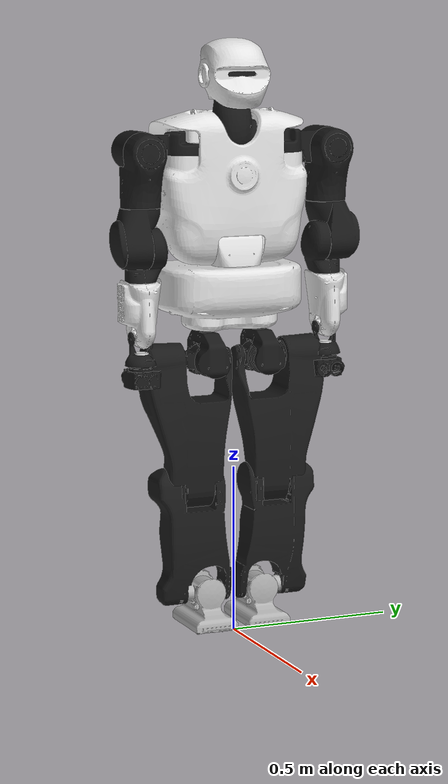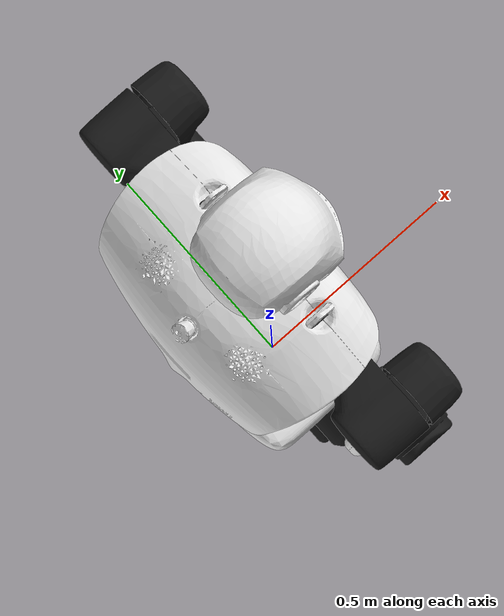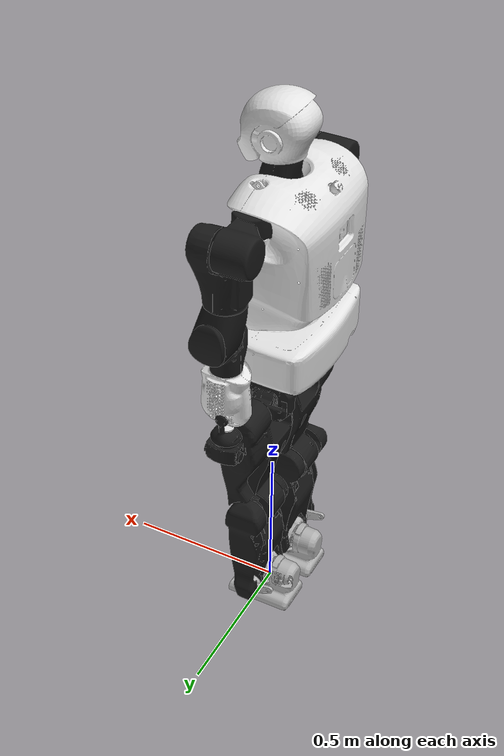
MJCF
<mujoco model="talos">
  <include file="talos_full.xml"/>

  <actuator>
    <motor name="torso_1_joint_torque" joint="torso_1_joint" ctrlrange="-200 200"/>
    <motor name="torso_2_joint_torque" joint="torso_2_joint" ctrlrange="-200 200"/>
    <motor name="arm_left_1_joint_torque" joint="arm_left_1_joint" ctrlrange="-100 100"/>
    <motor name="arm_left_2_joint_torque" joint="arm_left_2_joint" ctrlrange="-100 100"/>
    <motor name="arm_left_3_joint_torque" joint="arm_left_3_joint" ctrlrange="-70 70"/>
    <motor name="arm_left_4_joint_torque" joint="arm_left_4_joint" ctrlrange="-70 70"/>
    <motor name="arm_right_1_joint_torque" joint="arm_right_1_joint" ctrlrange="-100 100"/>
    <motor name="arm_right_2_joint_torque" joint="arm_right_2_joint" ctrlrange="-100 100"/>
    <motor name="arm_right_3_joint_torque" joint="arm_right_3_joint" ctrlrange="-70 70"/>
    <motor name="arm_right_4_joint_torque" joint="arm_right_4_joint" ctrlrange="-70 70"/>
    <motor name="leg_left_1_joint_torque" joint="leg_left_1_joint" ctrlrange="-100 100"/>
    <motor name="leg_left_2_joint_torque" joint="leg_left_2_joint" ctrlrange="-160 160"/>
    <motor name="leg_left_3_joint_torque" joint="leg_left_3_joint" ctrlrange="-160 160"/>
    <motor name="leg_left_4_joint_torque" joint="leg_left_4_joint" ctrlrange="-400 400"/>
    <motor name="leg_left_5_joint_torque" joint="leg_left_5_joint" ctrlrange="-160 160"/>
    <motor name="leg_left_6_joint_torque" joint="leg_left_6_joint" ctrlrange="-100 100"/>
    <motor name="leg_right_1_joint_torque" joint="leg_right_1_joint" ctrlrange="-100 100"/>
    <motor name="leg_right_2_joint_torque" joint="leg_right_2_joint" ctrlrange="-160 160"/>
    <motor name="leg_right_3_joint_torque" joint="leg_right_3_joint" ctrlrange="-160 160"/>
    <motor name="leg_right_4_joint_torque" joint="leg_right_4_joint" ctrlrange="-400 400"/>
    <motor name="leg_right_5_joint_torque" joint="leg_right_5_joint" ctrlrange="-160 160"/>
    <motor name="leg_right_6_joint_torque" joint="leg_right_6_joint" ctrlrange="-100 100"/>
  </actuator>

  <keyframe>
    <key
      qpos="0 0 1.08 1 0 0 0 0 0 0 0 0 0 0 0 0 0 0 0 0 0 0 0 0 0 0 0 0 0"/>
  </keyframe>
</mujoco>

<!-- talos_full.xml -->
<mujoco model="talos">
  <compiler angle="radian" meshdir="assets" autolimits="true"/>

  <option timestep="0.001" integrator="implicitfast"/>

  <asset>
    <material name="black" rgba="0.1 0.1 0.1 1"/>
    <material name="orange" rgba="1 0.5 0 1"/>
    <material name="white" rgba="0.9 0.9 0.9 1"/>

    <mesh file="torso/torso_1.stl"/>
    <mesh file="torso/torso_2.stl"/>
    <mesh file="torso/torso_2_collision.stl"/>
    <mesh file="torso/base_link.stl"/>
    <mesh file="torso/base_link_collision.stl"/>
    <mesh file="head/head_1.stl"/>
    <mesh file="head/head_1_collision.stl"/>
    <mesh file="head/head_2_default.stl"/>
    <mesh file="head/head_2_default_collision.stl"/>
    <mesh file="sensors/orbbec/orbbec.stl"/>
    <mesh name="l_arm_1" file="arm/arm_1.stl"/>
    <mesh name="l_arm_1c" file="arm/arm_1_collision.stl"/>
    <mesh name="l_arm_2" file="arm/arm_2.stl"/>
    <mesh name="l_arm_2c" file="arm/arm_2_collision.stl"/>
    <mesh name="l_arm_3" file="arm/arm_3.stl"/>
    <mesh name="l_arm_3c" file="arm/arm_3_collision.stl"/>
    <mesh name="l_arm_4" file="arm/arm_4.stl"/>
    <mesh name="l_arm_4c" file="arm/arm_4_collision.stl"/>
    <mesh name="l_arm_5" file="arm/arm_5.stl"/>
    <mesh name="l_arm_5c" file="arm/arm_5_collision.stl"/>
    <mesh name="l_arm_6" file="arm/arm_6.stl"/>
    <mesh name="l_arm_6c" file="arm/arm_6_collision.stl"/>
    <mesh name="l_arm_7" file="arm/arm_7.stl"/>
    <mesh name="l_arm_7c" file="arm/arm_7_collision.stl"/>
    <mesh name="r_arm_1" file="arm/arm_1.stl" scale="1 -1 1"/>
    <mesh name="r_arm_1c" file="arm/arm_1_collision.stl" scale="1 -1 1"/>
    <mesh name="r_arm_2" file="arm/arm_2.stl" scale="1 -1 1"/>
    <mesh name="r_arm_2c" file="arm/arm_2_collision.stl" scale="1 -1 1"/>
    <mesh name="r_arm_3" file="arm/arm_3.stl" scale="1 -1 1"/>
    <mesh name="r_arm_3c" file="arm/arm_3_collision.stl" scale="1 -1 1"/>
    <mesh name="r_arm_4" file="arm/arm_4.stl" scale="1 -1 1"/>
    <mesh name="r_arm_4c" file="arm/arm_4_collision.stl" scale="1 -1 1"/>
    <mesh name="r_arm_5" file="arm/arm_5.stl" scale="1 -1 1"/>
    <mesh name="r_arm_5c" file="arm/arm_5_collision.stl" scale="1 -1 1"/>
    <mesh name="r_arm_6" file="arm/arm_6.stl" scale="1 -1 1"/>
    <mesh name="r_arm_6c" file="arm/arm_6_collision.stl" scale="1 -1 1"/>
    <mesh name="r_arm_7" file="arm/arm_7.stl" scale="1 -1 1"/>
    <mesh name="r_arm_7c" file="arm/arm_7_collision.stl" scale="1 -1 1"/>
    <mesh name="gripper_base_link" file="gripper/base_link.stl"/>
    <mesh name="gripper_base_link_collision" file="gripper/base_link_collision.stl"/>
    <mesh file="gripper/fingertip.stl"/>
    <mesh file="gripper/fingertip_collision.stl"/>
    <mesh file="gripper/gripper_motor_double.stl"/>
    <mesh file="gripper/gripper_motor_double_collision.stl"/>
    <mesh file="gripper/gripper_motor_single.stl"/>
    <mesh file="gripper/gripper_motor_single_collision.stl"/>
    <mesh file="gripper/inner_double.stl"/>
    <mesh file="gripper/inner_double_collision.stl"/>
    <mesh file="gripper/inner_single.stl"/>
    <mesh file="gripper/inner_single_collision.stl"/>
    <mesh name="l_hip_z_lo_res" file="v2/hip_z_lo_res.stl"/>
    <mesh name="l_hip_z_collision" file="v2/hip_z_collision.stl"/>
    <mesh name="l_hip_x_lo_res" file="v2/hip_x_lo_res.stl"/>
    <mesh name="l_hip_x_collision" file="v2/hip_x_collision.stl"/>
    <mesh name="l_hip_y_lo_res" file="v2/hip_y_lo_res.stl"/>
    <mesh name="l_hip_y_collision" file="v2/hip_y_collision.stl"/>
    <mesh name="l_knee_lo_res" file="v2/knee_lo_res.stl"/>
    <mesh name="l_knee_collision" file="v2/knee_collision.stl"/>
    <mesh name="l_ankle_Y_lo_res" file="v2/ankle_Y_lo_res.stl"/>
    <mesh name="l_ankle_Y_collision" file="v2/ankle_Y_collision.stl"/>
    <mesh name="l_ankle_X_lo_res" file="v2/ankle_X_lo_res.stl"/>
    <mesh name="l_ankle_X_collision" file="v2/ankle_X_collision.stl" scale="1 1 0.88"/>
    <mesh name="r_hip_z_lo_res" file="v2/hip_z_lo_res.stl" scale="1 -1 1"/>
    <mesh name="r_hip_z_collision" file="v2/hip_z_collision.stl" scale="1 -1 1"/>
    <mesh name="r_hip_x_lo_res" file="v2/hip_x_lo_res.stl" scale="1 -1 1"/>
    <mesh name="r_hip_x_collision" file="v2/hip_x_collision.stl" scale="1 -1 1"/>
    <mesh name="r_hip_y_lo_res" file="v2/hip_y_lo_res.stl" scale="1 -1 1"/>
    <mesh name="r_hip_y_collision" file="v2/hip_y_collision.stl" scale="1 -1 1"/>
    <mesh name="r_knee_lo_res" file="v2/knee_lo_res.stl" scale="1 -1 1"/>
    <mesh name="r_knee_collision" file="v2/knee_collision.stl" scale="1 -1 1"/>
    <mesh name="r_ankle_Y_lo_res" file="v2/ankle_Y_lo_res.stl" scale="1 -1 1"/>
    <mesh name="r_ankle_Y_collision" file="v2/ankle_Y_collision.stl" scale="1 -1 1"/>
    <mesh name="r_ankle_X_lo_res" file="v2/ankle_X_lo_res.stl" scale="1 -1 1"/>
    <mesh name="r_ankle_X_collision" file="v2/ankle_X_collision.stl" scale="1 -1 0.88"/>
  </asset>

  <default>
    <default class="talos">
      <site rgba="1 0 0 1" size="0.01" group="5"/>
      <joint frictionloss="1" damping="1"/>
      <geom type="mesh" solref="0.001 1"/>
      <default class="visual">
        <geom group="2" contype="0" conaffinity="0" density="0"/>
      </default>
      <default class="collision">
        <geom group="3"/>
      </default>
    </default>
  </default>

  <worldbody>
    <body name="base_link" pos="0 0 1.1" childclass="talos">
      <freejoint name="reference"/>
      <inertial pos="-0.05709419 0.00153054 -0.0762521" mass="15.36284"
        fullinertia="0.20105075811 0.08411496729 0.2318908414 0.00023244734 0.0040167728 -0.00087206649"/>
      <geom class="visual" material="white" mesh="base_link"/>
      <body name="torso_1_link" pos="0 0 0.0722">
        <inertial pos="0.00078223 3.528e-05 -0.0178246" quat="0.703744 0.704233 0.0663452 -0.0663278" mass="2.29466"
          diaginertia="0.00639091 0.00622386 0.00410256"/>
        <joint name="torso_1_joint" axis="0 0 1" range="-1.25664 1.25664" frictionloss="2" actuatorfrcrange="-200 200"/>
        <geom class="visual" material="white" mesh="torso_1"/>
        <body name="torso_2_link">
          <inertial pos="-0.0463 -0.000989647 0.145241" quat="0.704021 0.708473 0.0363665 -0.0331367" mass="16.984"
            diaginertia="0.444971 0.320913 0.299991"/>
          <joint name="torso_2_joint" axis="0 1 0" range="-0.226893 0.733038" frictionloss="2"
            actuatorfrcrange="-200 200"/>
          <geom class="visual" material="white" mesh="torso_2"/>
          <geom size="0.005 0.005 0.005" pos="0.04925 0 0.078" quat="0 1 1 0" type="box" class="visual" density="0"
            material="black"/>
          <body name="head_1_link" pos="0 0 0.316">
            <inertial pos="-0.00157211 -0.00157919 0.0217577" quat="0.679576 0.71147 -0.126684 0.126246" mass="0.73746"
              diaginertia="0.0022809 0.00202202 0.00110971"/>
            <geom class="visual" mesh="head_1" material="black"/>
            <body name="head_2_link">
              <site name="head" pos="0 0 0.2"/>
              <inertial pos="0.0108233 0.000630364 0.142045" quat="0.584927 -0.0294601 -0.0201927 0.810299"
                mass="1.46795" diaginertia="0.0110721 0.0109715 0.00581517"/>
              <geom class="visual" material="white" mesh="head_2_default"/>
              <geom pos="0.0621 0.0375 0.1832" class="visual" mesh="orbbec" material="black"/>
            </body>
          </body>
          <body name="arm_left_1_link" pos="0 0.1575 0.232">
            <inertial pos="-0.0002762 0.100602 0.0443742" quat="0.509187 0.520076 -0.492016 0.477671" mass="2.71457"
              diaginertia="0.0135919 0.012374 0.00418528"/>
            <joint name="arm_left_1_joint" axis="0 0 1" range="-1.5708 0.785398" actuatorfrcrange="-100 100"/>
            <geom class="visual" mesh="l_arm_1" material="black"/>
            <body name="arm_left_2_link" pos="0.00493 0.1365 0.04673">
              <inertial pos="0.0143883 0.00092938 -0.0868427" quat="0.981914 0.00964503 0.164999 0.0923476"
                mass="2.42509" diaginertia="0.0140925 0.0138001 0.00368288"/>
              <joint name="arm_left_2_joint" axis="1 0 0" range="0.00872665 2.87107" actuatorfrcrange="-100 100"/>
              <geom class="visual" mesh="l_arm_2" material="black"/>
              <body name="arm_left_3_link">
                <inertial pos="0.0136084 0.0124162 -0.2499" quat="0.991718 0.0691072 -0.105592 -0.0238848"
                  mass="2.20874" diaginertia="0.00735601 0.00699198 0.0036592"/>
                <joint name="arm_left_3_joint" axis="0 0 1" range="-2.42601 2.42601" actuatorfrcrange="-70 70"/>
                <geom class="visual" mesh="l_arm_3" material="black"/>
                <body name="arm_left_4_link" pos="0.02 0 -0.2782">
                  <inertial pos="-0.00810404 -0.0194433 -0.0332924" quat="0.428586 -0.11894 0.057285 0.893804"
                    mass="0.815675" diaginertia="0.00326211 0.002924 0.00111543"/>
                  <joint name="arm_left_4_joint" axis="0 1 0" range="-2.23402 -0.00349066" actuatorfrcrange="-70 70"/>
                  <geom class="visual" mesh="l_arm_4" material="black"/>
                  <body name="arm_left_5_link" pos="-0.02 0 -0.2643">
                    <inertial pos="-6e-05 0.003262 0.079625" quat="0.711712 -0.019748 0.0131536 0.70207" mass="1.87792"
                      diaginertia="0.004373 0.003495 0.002278"/>
                    <geom class="visual" material="white" mesh="l_arm_5"/>
                    <body name="arm_left_6_link">
                      <inertial pos="2.1e-05 -0.001965 -0.000591" quat="0.0104356 0.706678 0.0122672 0.707352"
                        mass="0.40931" diaginertia="0.000154 0.000141 0.000107"/>
                      <geom class="visual" material="white" mesh="l_arm_6"/>
                      <body name="arm_left_7_link">
                        <inertial pos="0.00215393 0.00361697 -0.0837948" quat="0.966304 0.0192407 0.0500561 -0.251755"
                          mass="1.04198" diaginertia="0.00273016 0.00272405 0.0010495"/>
                        <geom class="visual" mesh="l_arm_7" material="black"/>
                        <geom size="0.0225 0.00785" pos="0 0 -0.051" quat="-1 0 0 -1" type="cylinder" class="visual"
                          material="white"/>
                        <geom size="0.025 0.004875" pos="0 0 -0.063725" type="cylinder" class="visual" material="black"/>
                        <geom pos="0 0 -0.092475" class="visual" mesh="gripper_base_link" material="black"/>
                      </body>
                    </body>
                  </body>
                </body>
              </body>
            </body>
          </body>
          <body name="arm_right_1_link" pos="0 -0.1575 0.232">
            <inertial pos="-0.0002762 -0.100602 0.0443742" quat="0.520076 0.509187 -0.477671 0.492016" mass="2.71457"
              diaginertia="0.0135919 0.012374 0.00418528"/>
            <joint name="arm_right_1_joint" axis="0 0 1" range="-0.785398 1.5708" actuatorfrcrange="-100 100"/>
            <geom class="visual" mesh="r_arm_1" material="black"/>
            <body name="arm_right_2_link" pos="0.00493 -0.1365 0.04673">
              <inertial pos="0.0143883 -0.00092938 -0.0868427" quat="0.981914 -0.00964503 0.164999 -0.0923476"
                mass="2.42509" diaginertia="0.0140925 0.0138001 0.00368288"/>
              <joint name="arm_right_2_joint" axis="1 0 0" range="-2.87107 -0.00872665" actuatorfrcrange="-100 100"/>
              <geom class="visual" mesh="r_arm_2" material="black"/>
              <body name="arm_right_3_link">
                <inertial pos="0.0136084 -0.0124162 -0.2499" quat="0.991718 -0.0691072 -0.105592 0.0238848"
                  mass="2.20874" diaginertia="0.00735601 0.00699198 0.0036592"/>
                <joint name="arm_right_3_joint" axis="0 0 1" range="-2.42601 2.42601" actuatorfrcrange="-70 70"/>
                <geom class="visual" mesh="r_arm_3" material="black"/>
                <body name="arm_right_4_link" pos="0.02 0 -0.2782">
                  <inertial pos="-0.00810404 -0.0194433 -0.0332924" quat="0.428586 -0.11894 0.057285 0.893804"
                    mass="0.815675" diaginertia="0.00326211 0.002924 0.00111543"/>
                  <joint name="arm_right_4_joint" axis="0 1 0" range="-2.23402 -0.00349066" actuatorfrcrange="-70 70"/>
                  <geom class="visual" mesh="r_arm_4" material="black"/>
                  <body name="arm_right_5_link" pos="-0.02 0 -0.2643">
                    <inertial pos="-6e-05 -0.003262 0.079625" quat="0.70207 0.0131536 -0.019748 0.711712" mass="1.87792"
                      diaginertia="0.004373 0.003495 0.002278"/>

                    <geom class="visual" material="white" mesh="r_arm_5"/>
                    <body name="arm_right_6_link">
                      <inertial pos="2.1e-05 0.001965 -0.000591" quat="-0.0104356 0.706678 -0.0122672 0.707352"
                        mass="0.40931" diaginertia="0.000154 0.000141 0.000107"/>

                      <geom class="visual" material="white" mesh="r_arm_6"/>
                      <body name="arm_right_7_link">
                        <inertial pos="0.0023011 -0.00361697 -0.0837948" quat="0.927123 -0.0149278 0.0465372 0.371557"
                          mass="1.04198" diaginertia="0.00273231 0.00271796 0.00105208"/>

                        <geom class="visual" mesh="r_arm_7" material="black"/>
                        <geom size="0.0225 0.00785" pos="0 0 -0.051" quat="1 0 0 -1" type="cylinder" class="visual"
                          material="white"/>
                        <geom size="0.025 0.004875" pos="0 0 -0.063725" quat="0 0 0 -1" type="cylinder" class="visual"
                          material="black"/>
                        <geom pos="0 0 -0.092475" quat="0 0 0 -1" class="visual" mesh="gripper_base_link"
                          material="black"/>
                      </body>
                    </body>
                  </body>
                </body>
              </body>
            </body>
          </body>
        </body>
      </body>
      <body name="leg_left_1_link" pos="-0.02 0.085 -0.27105">
        <inertial pos="0.0847284 0.109974 0.017059" quat="0.522748 -0.852371 -0.00673577 0.012351" mass="2.23501"
          diaginertia="0.0105013 0.0076913 0.00473271"/>
        <joint name="leg_left_1_joint" axis="0 0 1" range="-0.349066 1.5708" actuatorfrcrange="-100 100"/>
        <geom class="visual" mesh="l_hip_z_lo_res" material="black"/>
        <body name="leg_left_2_link">
          <inertial pos="-0.00704703 0.0259266 0.00273385" quat="0.712294 0.701399 -0.00472331 -0.0255805"
            mass="1.49095" diaginertia="0.00497732 0.00474343 0.00189918"/>
          <joint name="leg_left_2_joint" axis="1 0 0" range="-0.5236 0.5236" actuatorfrcrange="-160 160"/>
          <geom class="visual" mesh="l_hip_x_lo_res" material="black"/>
          <body name="leg_left_3_link">
            <inertial pos="0.0058523 0.0636967 -0.183396" quat="0.995121 -0.0974306 -0.00559068 0.0145098"
              mass="6.23987" diaginertia="0.153409 0.140791 0.0256712"/>
            <joint name="leg_left_3_joint" axis="0 1 0" range="-2.095 0.7" actuatorfrcrange="-160 160"/>
            <geom class="visual" mesh="l_hip_y_lo_res" material="black"/>
            <body name="leg_left_4_link" pos="0 0 -0.38">
              <inertial pos="0.0131772 0.0291751 -0.115946" quat="0.999357 0.00773677 -0.0135107 0.0322952"
                mass="3.75995" diaginertia="0.0429266 0.0359662 0.013621"/>
              <joint name="leg_left_4_joint" axis="0 1 0" range="0 2.618" actuatorfrcrange="-400 400"/>
              <geom class="visual" mesh="l_knee_lo_res" material="black"/>
              <body name="leg_left_5_link" pos="0 0 -0.325">
                <inertial pos="-0.0140084 0.0418006 0.0382019" quat="0.94386 -0.249123 0.00319491 0.216924"
                  mass="1.29096" diaginertia="0.0118206 0.010046 0.00352112"/>
                <joint name="leg_left_5_joint" axis="0 1 0" range="-1.27 0.68" actuatorfrcrange="-160 160"/>
                <geom class="visual" rgba="0.7 0.7 0.7 1" mesh="l_ankle_Y_lo_res"/>
                <body name="leg_left_6_link">
                  <inertial pos="-0.0201699 -0.000510665 -0.0602836" quat="0.343485 0.610901 0.618186 0.3559"
                    mass="1.61177" diaginertia="0.00773279 0.006503 0.00387932"/>
                  <joint name="leg_left_6_joint" axis="1 0 0" range="-0.5236 0.5236" actuatorfrcrange="-100 100"/>
                  <geom class="visual" rgba="0.7 0.7 0.7 1" mesh="l_ankle_X_lo_res"/>
                  <geom class="collision" contype="6" type="box" size=".1 .06 .006" pos="-0.005 0 -.1"/>
                  <site name="left_foot" pos="0 0 -0.1"/>
                  <geom name="foot_left_1" pos=".095 0.06 -0.1" size=".005" type="sphere"/>
                  <geom name="foot_left_2" pos=".095 -0.06 -0.1" size=".005" type="sphere"/>
                  <geom name="foot_left_3" pos="-0.105 0.06 -0.1" size=".005" type="sphere"/>
                  <geom name="foot_left_4" pos="-0.105 -0.06 -0.1" size=".005" type="sphere"/>
                </body>
              </body>
            </body>
          </body>
        </body>
      </body>
      <body name="leg_right_1_link" pos="-0.02 -0.085 -0.27105">
        <inertial pos="0.0847284 -0.109974 0.017059" quat="0.522748 0.852371 -0.00673577 0.012351" mass="2.23501"
          diaginertia="0.0105013 0.0076913 0.00473271"/>
        <joint name="leg_right_1_joint" axis="0 0 1" range="-1.5708 0.349066" actuatorfrcrange="-100 100"/>
        <geom class="visual" mesh="r_hip_z_lo_res" material="black"/>
        <body name="leg_right_2_link">
          <inertial pos="-0.00704703 -0.0259266 0.00273385" quat="0.701399 0.712294 0.0255805 0.00472331" mass="1.49095"
            diaginertia="0.00497732 0.00474343 0.00189918"/>
          <joint name="leg_right_2_joint" axis="1 0 0" range="-0.5236 0.5236" actuatorfrcrange="-160 160"/>
          <geom class="visual" mesh="r_hip_x_lo_res" material="black"/>
          <body name="leg_right_3_link">
            <inertial pos="0.0058523 -0.0636967 -0.183396" quat="0.995121 0.0974306 -0.00559068 -0.0145098"
              mass="6.23987" diaginertia="0.153409 0.140791 0.0256712"/>
            <joint name="leg_right_3_joint" axis="0 1 0" range="-2.095 0.7" actuatorfrcrange="-160 160"/>
            <geom class="visual" mesh="r_hip_y_lo_res" material="black"/>
            <body name="leg_right_4_link" pos="0 0 -0.38">
              <inertial pos="0.0131772 -0.0291751 -0.115946" quat="0.999357 -0.00773677 -0.0135107 -0.0322952"
                mass="3.75995" diaginertia="0.0429266 0.0359662 0.013621"/>
              <joint name="leg_right_4_joint" axis="0 1 0" range="0 2.618" actuatorfrcrange="-400 400"/>
              <geom class="visual" mesh="r_knee_lo_res" material="black"/>
              <body name="leg_right_5_link" pos="0 0 -0.325">
                <inertial pos="-0.0140084 -0.0418006 0.0382019" quat="0.94386 0.249123 0.00319491 -0.216924"
                  mass="1.29096" diaginertia="0.0118206 0.010046 0.00352112"/>
                <joint name="leg_right_5_joint" axis="0 1 0" range="-1.27 0.68" actuatorfrcrange="-160 160"/>
                <geom class="visual" rgba="0.7 0.7 0.7 1" mesh="r_ankle_Y_lo_res"/>
                <body name="leg_right_6_link">
                  <inertial pos="-0.0201699 0.000510665 -0.0602836" quat="0.3559 0.618186 0.610901 0.343485"
                    mass="1.61177" diaginertia="0.00773279 0.006503 0.00387932"/>
                  <joint name="leg_right_6_joint" axis="1 0 0" range="-0.5236 0.5236" actuatorfrcrange="-100 100"/>
                  <geom class="visual" rgba="0.7 0.7 0.7 1" mesh="r_ankle_X_lo_res"/>
                  <geom class="collision" contype="6" type="box" size=".1 .06 .006" pos="-0.005 0 -.1"/>
                  <site name="right_foot" pos="0 0 -0.1"/>
                  <geom name="foot_right_1" pos=".095 0.06 -0.1" size=".005" type="sphere"/>
                  <geom name="foot_right_2" pos=".095 -0.06 -0.1" size=".005" type="sphere"/>
                  <geom name="foot_right_3" pos="-0.105 0.06 -0.1" size=".005" type="sphere"/>
                  <geom name="foot_right_4" pos="-0.105 -0.06 -0.1" size=".005" type="sphere"/>
                </body>
              </body>
            </body>
          </body>
        </body>
      </body>
    </body>
  </worldbody>
</mujoco>
